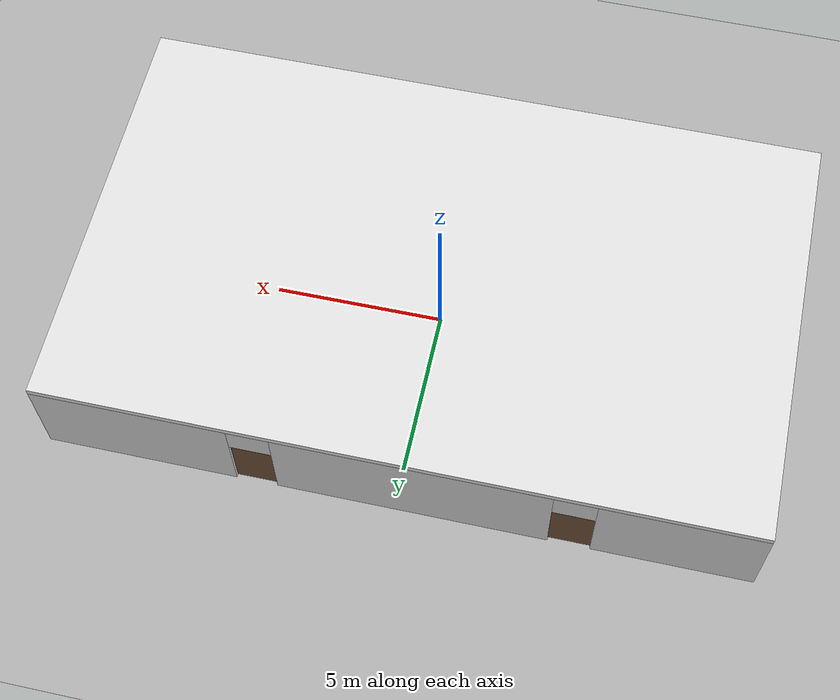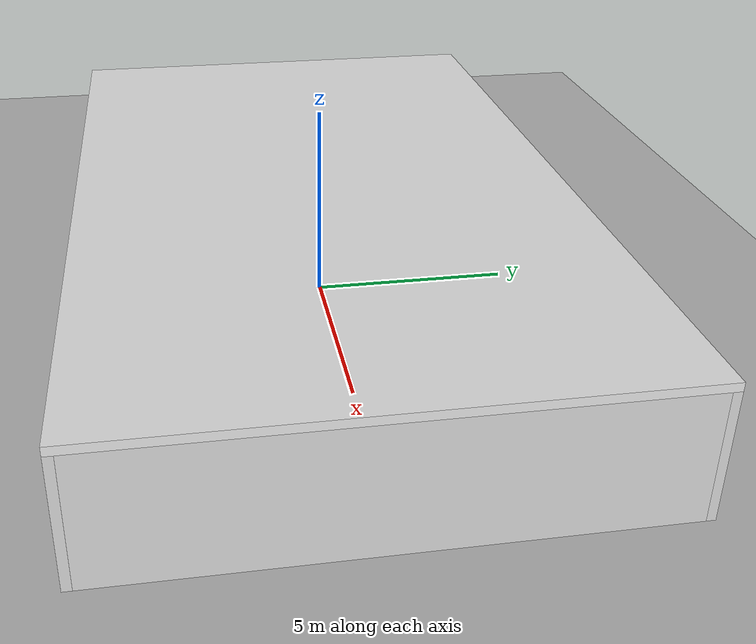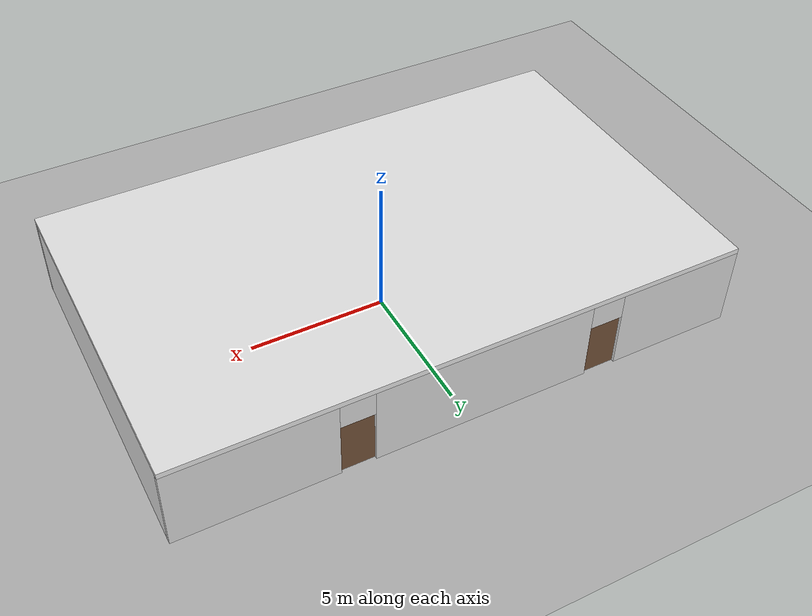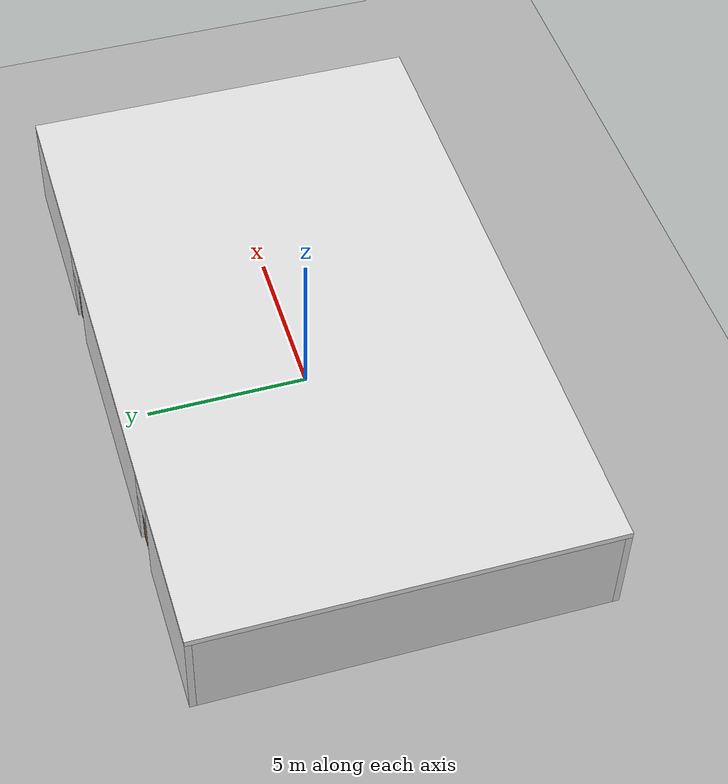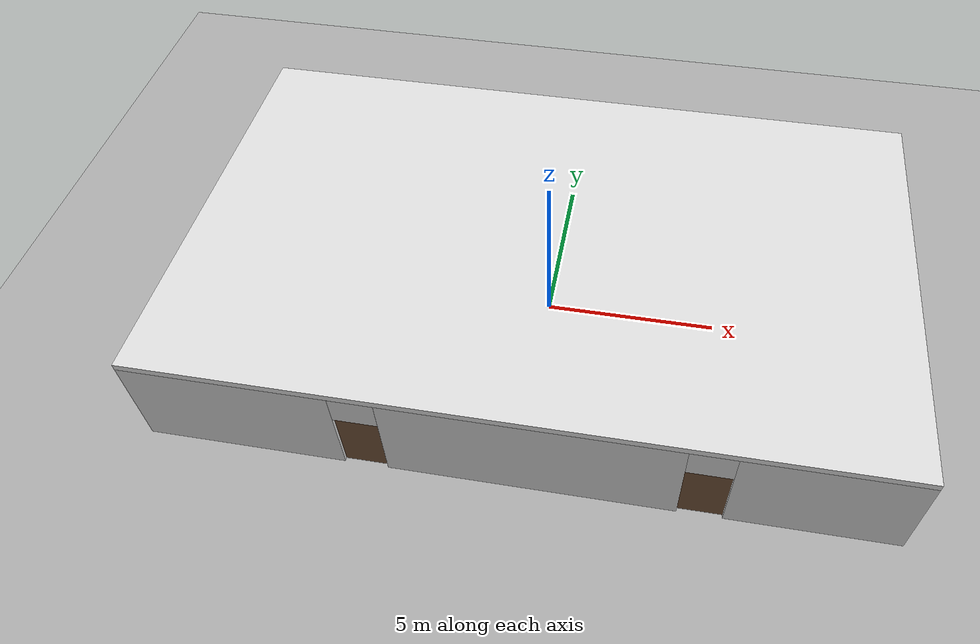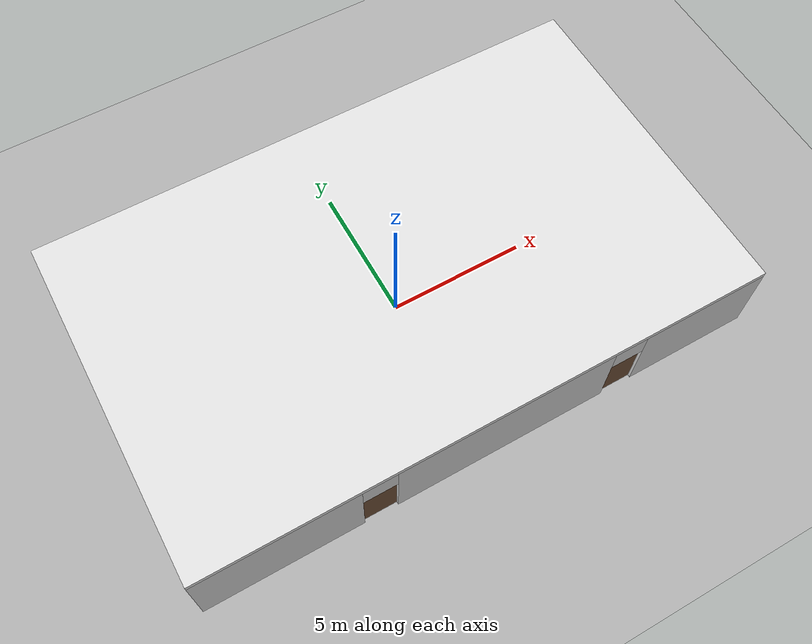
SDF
<sdf version="1.7">
 <world name="exit_room">
  <physics name="default_physics" default="true" type="dart">
   <max_step_size>0.001</max_step_size>
   <real_time_factor>1.0</real_time_factor>
   <real_time_update_rate>1000</real_time_update_rate>
  </physics>
  <plugin filename="gz-sim-physics-system" name="gz::sim::systems::Physics"/>
  <plugin filename="gz-sim-user-commands-system" name="gz::sim::systems::UserCommands"/>
  <plugin filename="gz-sim-scene-broadcaster-system" name="gz::sim::systems::SceneBroadcaster"/>
  <plugin filename="gz-sim-contact-system" name="gz::sim::systems::Contact"/>
  <plugin filename="gz-sim-sensors-system" name="gz::sim::systems::Sensors">
   <render_engine>ogre2</render_engine>
  </plugin>
  <plugin filename="gz-sim-imu-system" name="gz::sim::systems::Imu"/>
  <scene>
   <ambient>0.6 0.6 0.6 1</ambient>
   <background>0.3 0.7 0.9 1</background>
   <shadows>0</shadows>
   <grid>0</grid>
  </scene>
  <light type="directional" name="sun">
   <cast_shadows>false</cast_shadows>
   <pose>0 0 10 0 0 0</pose>
   <diffuse>0.8 0.8 0.8 1</diffuse>
   <specular>0.2 0.2 0.2 1</specular>
   <direction>-0.5 0.1 -0.9</direction>
  </light>
  <model name="ground_plane">
   <static>true</static>
   <link name="link">
    <collision name="collision">
     <geometry><plane><normal>0 0 1</normal><size>100 100</size></plane></geometry>
     <surface>
      <friction><ode><mu>100</mu><mu2>50</mu2></ode></friction>
      <contact>
       <ode>
        <soft_cfm>0</soft_cfm>
        <soft_erp>0.2</soft_erp>
        <kp>1e+13</kp>
        <kd>1</kd>
        <max_vel>0.01</max_vel>
        <min_depth>0.001</min_depth>
       </ode>
      </contact>
     </surface>
    </collision>
    <visual name="visual">
     <cast_shadows>false</cast_shadows>
     <geometry><plane><normal>0 0 1</normal><size>20.4 12.4</size></plane></geometry>
     <material>
      <ambient>0.7 0.7 0.7 1</ambient>
      <diffuse>0.7 0.7 0.7 1</diffuse>
      <specular>0.2 0.2 0.2 1</specular>
     </material>
    </visual>
   </link>
  </model>
  <model name="wall_north_0">
   <static>true</static>
   <pose>-7.9000 6.1000 1.5000 0 0 -1.570796</pose>
   <link name="link">
    <collision name="collision"><geometry><box><size>0.2 4.6 3</size></box></geometry></collision>
    <visual name="visual">
     <geometry><box><size>0.2 4.6 3</size></box></geometry>
     <material><ambient>0.85 0.85 0.85 1</ambient><diffuse>0.85 0.85 0.85 1</diffuse></material>
    </visual>
   </link>
  </model>
  <model name="wall_north_1">
   <static>true</static>
   <pose>-0.5000 6.1000 1.5000 0 0 -1.570796</pose>
   <link name="link">
    <collision name="collision"><geometry><box><size>0.2 7.8 3</size></box></geometry></collision>
    <visual name="visual">
     <geometry><box><size>0.2 7.8 3</size></box></geometry>
     <material><ambient>0.85 0.85 0.85 1</ambient><diffuse>0.85 0.85 0.85 1</diffuse></material>
    </visual>
   </link>
  </model>
  <model name="wall_north_2">
   <static>true</static>
   <pose>7.4000 6.1000 1.5000 0 0 -1.570796</pose>
   <link name="link">
    <collision name="collision"><geometry><box><size>0.2 5.6 3</size></box></geometry></collision>
    <visual name="visual">
     <geometry><box><size>0.2 5.6 3</size></box></geometry>
     <material><ambient>0.85 0.85 0.85 1</ambient><diffuse>0.85 0.85 0.85 1</diffuse></material>
    </visual>
   </link>
  </model>
  <model name="lintel_north_0">
   <static>true</static>
   <pose>-5.0000 6.1000 2.5500 0 0 -1.570796</pose>
   <link name="link">
    <collision name="collision"><geometry><box><size>0.2 1.2 0.9</size></box></geometry></collision>
    <visual name="visual">
     <geometry><box><size>0.2 1.2 0.9</size></box></geometry>
     <material><ambient>0.85 0.85 0.85 1</ambient><diffuse>0.85 0.85 0.85 1</diffuse></material>
    </visual>
   </link>
  </model>
  <model name="lintel_north_1">
   <static>true</static>
   <pose>4.0000 6.1000 2.5500 0 0 -1.570796</pose>
   <link name="link">
    <collision name="collision"><geometry><box><size>0.2 1.2 0.9</size></box></geometry></collision>
    <visual name="visual">
     <geometry><box><size>0.2 1.2 0.9</size></box></geometry>
     <material><ambient>0.85 0.85 0.85 1</ambient><diffuse>0.85 0.85 0.85 1</diffuse></material>
    </visual>
   </link>
  </model>
  <model name="wall_south_0">
   <static>true</static>
   <pose>-7.4000 -6.1000 1.5000 0 0 1.570796</pose>
   <link name="link">
    <collision name="collision"><geometry><box><size>0.2 5.6 3</size></box></geometry></collision>
    <visual name="visual">
     <geometry><box><size>0.2 5.6 3</size></box></geometry>
     <material><ambient>0.85 0.85 0.85 1</ambient><diffuse>0.85 0.85 0.85 1</diffuse></material>
    </visual>
   </link>
  </model>
  <model name="wall_south_1">
   <static>true</static>
   <pose>0.5000 -6.1000 1.5000 0 0 1.570796</pose>
   <link name="link">
    <collision name="collision"><geometry><box><size>0.2 7.8 3</size></box></geometry></collision>
    <visual name="visual">
     <geometry><box><size>0.2 7.8 3</size></box></geometry>
     <material><ambient>0.85 0.85 0.85 1</ambient><diffuse>0.85 0.85 0.85 1</diffuse></material>
    </visual>
   </link>
  </model>
  <model name="wall_south_2">
   <static>true</static>
   <pose>7.9000 -6.1000 1.5000 0 0 1.570796</pose>
   <link name="link">
    <collision name="collision"><geometry><box><size>0.2 4.6 3</size></box></geometry></collision>
    <visual name="visual">
     <geometry><box><size>0.2 4.6 3</size></box></geometry>
     <material><ambient>0.85 0.85 0.85 1</ambient><diffuse>0.85 0.85 0.85 1</diffuse></material>
    </visual>
   </link>
  </model>
  <model name="lintel_south_0">
   <static>true</static>
   <pose>-4.0000 -6.1000 2.5500 0 0 1.570796</pose>
   <link name="link">
    <collision name="collision"><geometry><box><size>0.2 1.2 0.9</size></box></geometry></collision>
    <visual name="visual">
     <geometry><box><size>0.2 1.2 0.9</size></box></geometry>
     <material><ambient>0.85 0.85 0.85 1</ambient><diffuse>0.85 0.85 0.85 1</diffuse></material>
    </visual>
   </link>
  </model>
  <model name="lintel_south_1">
   <static>true</static>
   <pose>5.0000 -6.1000 2.5500 0 0 1.570796</pose>
   <link name="link">
    <collision name="collision"><geometry><box><size>0.2 1.2 0.9</size></box></geometry></collision>
    <visual name="visual">
     <geometry><box><size>0.2 1.2 0.9</size></box></geometry>
     <material><ambient>0.85 0.85 0.85 1</ambient><diffuse>0.85 0.85 0.85 1</diffuse></material>
    </visual>
   </link>
  </model>
  <model name="wall_east_0">
   <static>true</static>
   <pose>10.1000 0.0000 1.5000 0 0 3.141593</pose>
   <link name="link">
    <collision name="collision"><geometry><box><size>0.2 12 3</size></box></geometry></collision>
    <visual name="visual">
     <geometry><box><size>0.2 12 3</size></box></geometry>
     <material><ambient>0.85 0.85 0.85 1</ambient><diffuse>0.85 0.85 0.85 1</diffuse></material>
    </visual>
   </link>
  </model>
  <model name="wall_west_0">
   <static>true</static>
   <pose>-10.1000 0.0000 1.5000 0 0 0.000000</pose>
   <link name="link">
    <collision name="collision"><geometry><box><size>0.2 12 3</size></box></geometry></collision>
    <visual name="visual">
     <geometry><box><size>0.2 12 3</size></box></geometry>
     <material><ambient>0.85 0.85 0.85 1</ambient><diffuse>0.85 0.85 0.85 1</diffuse></material>
    </visual>
   </link>
  </model>
  <model name="ceiling">
   <static>true</static>
   <pose>0.0000 0.0000 3.1000 0 0 0.000000</pose>
   <link name="link">
    <collision name="collision"><geometry><box><size>20.4 12.4 0.2</size></box></geometry></collision>
    <visual name="visual">
     <geometry><box><size>20.4 12.4 0.2</size></box></geometry>
     <material><ambient>0.9 0.9 0.9 1</ambient><diffuse>0.9 0.9 0.9 1</diffuse></material>
    </visual>
   </link>
  </model>
  <model name="door_clear">
   <static>true</static>
   <pose>-5.0000 6.0750 1.0500 0 0 -1.570796</pose>
   <link name="link">
    <collision name="collision"><geometry><box><size>0.05 1.2 2.1</size></box></geometry></collision>
    <visual name="visual">
     <geometry><box><size>0.05 1.2 2.1</size></box></geometry>
     <material><ambient>0.45 0.32 0.22 1</ambient><diffuse>0.45 0.32 0.22 1</diffuse></material>
    </visual>
   </link>
  </model>
  <model name="jamb_clear_0">
   <static>true</static>
   <pose>-5.6300 5.9900 1.0500 0 0 -1.570796</pose>
   <link name="link">
    <collision name="collision"><geometry><box><size>0.02 0.06 2.1</size></box></geometry></collision>
    <visual name="visual">
     <geometry><box><size>0.02 0.06 2.1</size></box></geometry>
     <material><ambient>0.3 0.3 0.3 1</ambient><diffuse>0.3 0.3 0.3 1</diffuse></material>
    </visual>
   </link>
  </model>
  <model name="jamb_clear_2">
   <static>true</static>
   <pose>-4.3700 5.9900 1.0500 0 0 -1.570796</pose>
   <link name="link">
    <collision name="collision"><geometry><box><size>0.02 0.06 2.1</size></box></geometry></collision>
    <visual name="visual">
     <geometry><box><size>0.02 0.06 2.1</size></box></geometry>
     <material><ambient>0.3 0.3 0.3 1</ambient><diffuse>0.3 0.3 0.3 1</diffuse></material>
    </visual>
   </link>
  </model>
  <model name="header_clear">
   <static>true</static>
   <pose>-5.0000 5.9900 2.1300 0 0 -1.570796</pose>
   <link name="link">
    <collision name="collision"><geometry><box><size>0.02 1.32 0.06</size></box></geometry></collision>
    <visual name="visual">
     <geometry><box><size>0.02 1.32 0.06</size></box></geometry>
     <material><ambient>0.3 0.3 0.3 1</ambient><diffuse>0.3 0.3 0.3 1</diffuse></material>
    </visual>
   </link>
  </model>
  <model name="door_warning">
   <static>true</static>
   <pose>4.0000 6.0750 1.0500 0 0 -1.570796</pose>
   <link name="link">
    <collision name="collision"><geometry><box><size>0.05 1.2 2.1</size></box></geometry></collision>
    <visual name="visual">
     <geometry><box><size>0.05 1.2 2.1</size></box></geometry>
     <material><ambient>0.45 0.32 0.22 1</ambient><diffuse>0.45 0.32 0.22 1</diffuse></material>
    </visual>
   </link>
  </model>
  <model name="jamb_warning_0">
   <static>true</static>
   <pose>3.3700 5.9900 1.0500 0 0 -1.570796</pose>
   <link name="link">
    <collision name="collision"><geometry><box><size>0.02 0.06 2.1</size></box></geometry></collision>
    <visual name="visual">
     <geometry><box><size>0.02 0.06 2.1</size></box></geometry>
     <material><ambient>0.3 0.3 0.3 1</ambient><diffuse>0.3 0.3 0.3 1</diffuse></material>
    </visual>
   </link>
  </model>
  <model name="jamb_warning_2">
   <static>true</static>
   <pose>4.6300 5.9900 1.0500 0 0 -1.570796</pose>
   <link name="link">
    <collision name="collision"><geometry><box><size>0.02 0.06 2.1</size></box></geometry></collision>
    <visual name="visual">
     <geometry><box><size>0.02 0.06 2.1</size></box></geometry>
     <material><ambient>0.3 0.3 0.3 1</ambient><diffuse>0.3 0.3 0.3 1</diffuse></material>
    </visual>
   </link>
  </model>
  <model name="header_warning">
   <static>true</static>
   <pose>4.0000 5.9900 2.1300 0 0 -1.570796</pose>
   <link name="link">
    <collision name="collision"><geometry><box><size>0.02 1.32 0.06</size></box></geometry></collision>
    <visual name="visual">
     <geometry><box><size>0.02 1.32 0.06</size></box></geometry>
     <material><ambient>0.3 0.3 0.3 1</ambient><diffuse>0.3 0.3 0.3 1</diffuse></material>
    </visual>
   </link>
  </model>
  <model name="door_blocked">
   <static>true</static>
   <pose>-4.0000 -6.0750 1.0500 0 0 1.570796</pose>
   <link name="link">
    <collision name="collision"><geometry><box><size>0.05 1.2 2.1</size></box></geometry></collision>
    <visual name="visual">
     <geometry><box><size>0.05 1.2 2.1</size></box></geometry>
     <material><ambient>0.45 0.32 0.22 1</ambient><diffuse>0.45 0.32 0.22 1</diffuse></material>
    </visual>
   </link>
  </model>
  <model name="jamb_blocked_0">
   <static>true</static>
   <pose>-4.6300 -5.9900 1.0500 0 0 1.570796</pose>
   <link name="link">
    <collision name="collision"><geometry><box><size>0.02 0.06 2.1</size></box></geometry></collision>
    <visual name="visual">
     <geometry><box><size>0.02 0.06 2.1</size></box></geometry>
     <material><ambient>0.3 0.3 0.3 1</ambient><diffuse>0.3 0.3 0.3 1</diffuse></material>
    </visual>
   </link>
  </model>
  <model name="jamb_blocked_2">
   <static>true</static>
   <pose>-3.3700 -5.9900 1.0500 0 0 1.570796</pose>
   <link name="link">
    <collision name="collision"><geometry><box><size>0.02 0.06 2.1</size></box></geometry></collision>
    <visual name="visual">
     <geometry><box><size>0.02 0.06 2.1</size></box></geometry>
     <material><ambient>0.3 0.3 0.3 1</ambient><diffuse>0.3 0.3 0.3 1</diffuse></material>
    </visual>
   </link>
  </model>
  <model name="header_blocked">
   <static>true</static>
   <pose>-4.0000 -5.9900 2.1300 0 0 1.570796</pose>
   <link name="link">
    <collision name="collision"><geometry><box><size>0.02 1.32 0.06</size></box></geometry></collision>
    <visual name="visual">
     <geometry><box><size>0.02 1.32 0.06</size></box></geometry>
     <material><ambient>0.3 0.3 0.3 1</ambient><diffuse>0.3 0.3 0.3 1</diffuse></material>
    </visual>
   </link>
  </model>
  <model name="door_person">
   <static>true</static>
   <pose>5.0000 -6.0750 1.0500 0 0 1.570796</pose>
   <link name="link">
    <collision name="collision"><geometry><box><size>0.05 1.2 2.1</size></box></geometry></collision>
    <visual name="visual">
     <geometry><box><size>0.05 1.2 2.1</size></box></geometry>
     <material><ambient>0.45 0.32 0.22 1</ambient><diffuse>0.45 0.32 0.22 1</diffuse></material>
    </visual>
   </link>
  </model>
  <model name="jamb_person_0">
   <static>true</static>
   <pose>4.3700 -5.9900 1.0500 0 0 1.570796</pose>
   <link name="link">
    <collision name="collision"><geometry><box><size>0.02 0.06 2.1</size></box></geometry></collision>
    <visual name="visual">
     <geometry><box><size>0.02 0.06 2.1</size></box></geometry>
     <material><ambient>0.3 0.3 0.3 1</ambient><diffuse>0.3 0.3 0.3 1</diffuse></material>
    </visual>
   </link>
  </model>
  <model name="jamb_person_2">
   <static>true</static>
   <pose>5.6300 -5.9900 1.0500 0 0 1.570796</pose>
   <link name="link">
    <collision name="collision"><geometry><box><size>0.02 0.06 2.1</size></box></geometry></collision>
    <visual name="visual">
     <geometry><box><size>0.02 0.06 2.1</size></box></geometry>
     <material><ambient>0.3 0.3 0.3 1</ambient><diffuse>0.3 0.3 0.3 1</diffuse></material>
    </visual>
   </link>
  </model>
  <model name="header_person">
   <static>true</static>
   <pose>5.0000 -5.9900 2.1300 0 0 1.570796</pose>
   <link name="link">
    <collision name="collision"><geometry><box><size>0.02 1.32 0.06</size></box></geometry></collision>
    <visual name="visual">
     <geometry><box><size>0.02 1.32 0.06</size></box></geometry>
     <material><ambient>0.3 0.3 0.3 1</ambient><diffuse>0.3 0.3 0.3 1</diffuse></material>
    </visual>
   </link>
  </model>
  <model name="carton_warning">
   <static>true</static>
   <pose>5.1000 5.2000 0.4000 0 0 0.000000</pose>
   <link name="link">
    <collision name="collision"><geometry><box><size>0.6 0.6 0.8</size></box></geometry></collision>
    <visual name="visual">
     <geometry><box><size>0.6 0.6 0.8</size></box></geometry>
     <material><ambient>0.7 0.55 0.35 1</ambient><diffuse>0.7 0.55 0.35 1</diffuse></material>
    </visual>
   </link>
  </model>
  <model name="pallet_blocked">
   <static>true</static>
   <pose>-4.0000 -5.3000 0.0750 0 0 0.000000</pose>
   <link name="link">
    <collision name="collision"><geometry><box><size>1.2 0.8 0.15</size></box></geometry></collision>
    <visual name="visual">
     <geometry><box><size>1.2 0.8 0.15</size></box></geometry>
     <material><ambient>0.6 0.45 0.3 1</ambient><diffuse>0.6 0.45 0.3 1</diffuse></material>
    </visual>
   </link>
  </model>
  <model name="cartons_blocked">
   <static>true</static>
   <pose>-4.0000 -5.3000 0.6500 0 0 0.000000</pose>
   <link name="link">
    <collision name="collision"><geometry><box><size>1.1 0.7 1</size></box></geometry></collision>
    <visual name="visual">
     <geometry><box><size>1.1 0.7 1</size></box></geometry>
     <material><ambient>0.7 0.55 0.35 1</ambient><diffuse>0.7 0.55 0.35 1</diffuse></material>
    </visual>
   </link>
  </model>
 </world>
</sdf>
